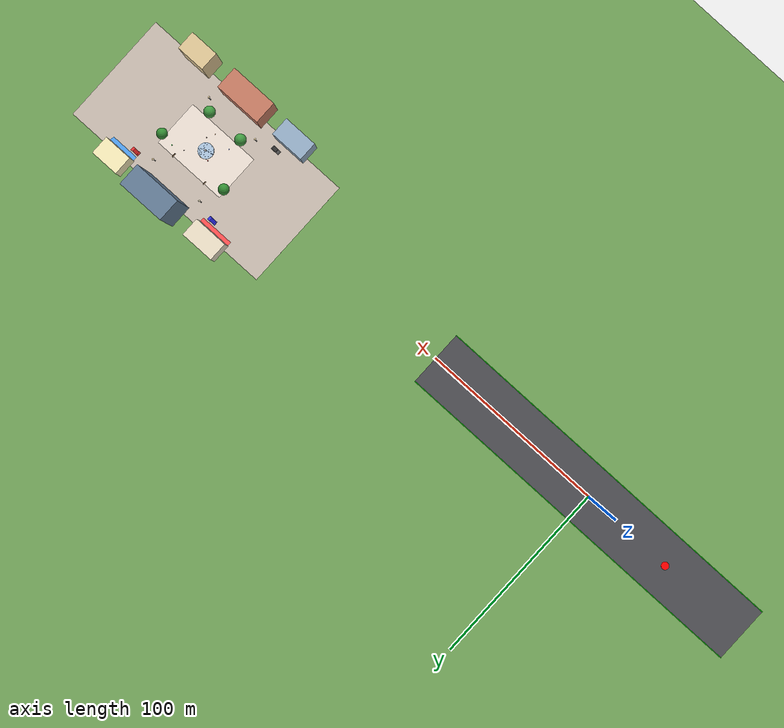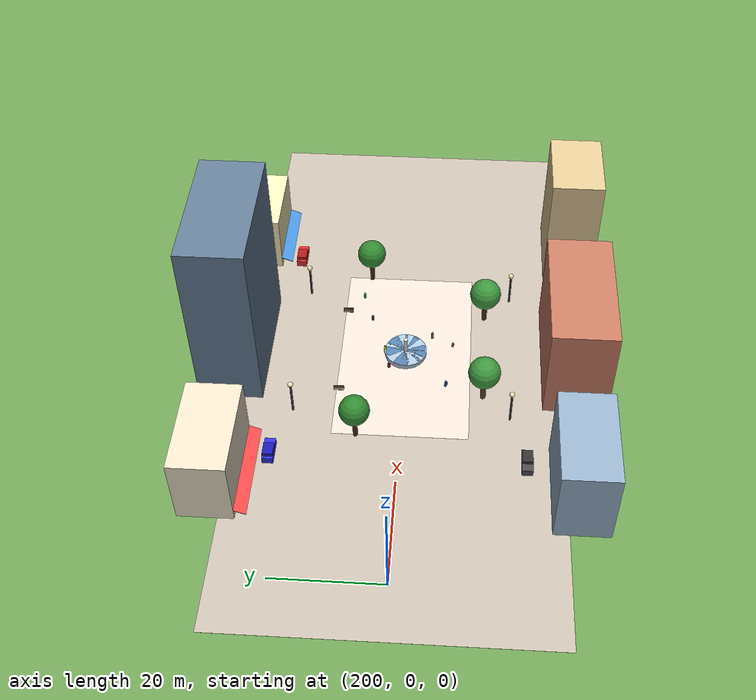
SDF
<?xml version="1.0"?>
<sdf version="1.9">
  <world name="boulevard">

    <physics name="1ms" type="ignored">
      <max_step_size>0.001</max_step_size>
      <real_time_factor>1.0</real_time_factor>
    </physics>

    <plugin filename="gz-sim-physics-system" name="gz::sim::systems::Physics"/>
    <plugin filename="gz-sim-user-commands-system" name="gz::sim::systems::UserCommands"/>
    <plugin filename="gz-sim-scene-broadcaster-system" name="gz::sim::systems::SceneBroadcaster"/>
    <plugin filename="gz-sim-imu-system" name="gz::sim::systems::Imu"/>
    <plugin filename="gz-sim-magnetometer-system" name="gz::sim::systems::Magnetometer"/>
    <plugin filename="gz-sim-air-pressure-system" name="gz::sim::systems::AirPressure"/>
    <plugin filename="gz-sim-navsat-system" name="gz::sim::systems::NavSat"/>
    <plugin filename="gz-sim-sensors-system" name="gz::sim::systems::Sensors">
      <render_engine>ogre2</render_engine>
    </plugin>

    <scene>
      <ambient>1.0 1.0 1.0</ambient>
      <background>0.8 0.8 1.0</background>
    </scene>

    <light type="directional" name="sun">
      <cast_shadows>true</cast_shadows>
      <pose>0 0 500 0 0 0</pose>
      <diffuse>1.0 0.95 0.9 1</diffuse>
      <specular>0.8 0.8 0.8 1</specular>
      <direction>-0.3 0.2 -0.9</direction>
    </light>

    <light type="directional" name="sun_diffuse">
      <cast_shadows>false</cast_shadows>
      <pose>0 0 500 0 0 0</pose>
      <diffuse>0.4 0.45 0.5 1</diffuse>
      <direction>0.5 -0.3 -0.8</direction>
    </light>

    <spherical_coordinates>
      <surface_model>EARTH_WGS84</surface_model>
      <world_frame_orientation>ENU</world_frame_orientation>
      <latitude_deg>47.397742</latitude_deg>
      <longitude_deg>8.545594</longitude_deg>
      <elevation>488.0</elevation>
      <heading_deg>0</heading_deg>
    </spherical_coordinates>

    <!-- Ground -->
    <model name="ground_plane">
      <static>true</static>
      <link name="link">
        <collision name="collision">
          <geometry>
            <plane><normal>0 0 1</normal><size>2000 2000</size></plane>
          </geometry>
        </collision>
        <visual name="visual">
          <geometry>
            <plane><normal>0 0 1</normal><size>2000 2000</size></plane>
          </geometry>
          <material>
            <ambient>0.4 0.6 0.3 1</ambient>
            <diffuse>0.45 0.65 0.35 1</diffuse>
          </material>
        </visual>
      </link>
    </model>

    <!-- ==================== RUNWAY (Drone spawns at -50, 0, 0) ==================== -->
    <model name="runway">
      <static>true</static>
      <pose>0 0 0.01 0 0 0</pose>
      <link name="link">
        <visual name="surface">
          <geometry>
            <box><size>200 30 0.02</size></box>
          </geometry>
          <material>
            <ambient>0.25 0.25 0.27 1</ambient>
            <diffuse>0.3 0.3 0.32 1</diffuse>
          </material>
        </visual>
        <collision name="collision">
          <geometry>
            <box><size>200 30 0.02</size></box>
          </geometry>
        </collision>
      </link>
    </model>

    <!-- Runway centerline -->
    <model name="centerline">
      <static>true</static>
      <pose>0 0 0.015 0 0 0</pose>
      <link name="link">
        <visual name="line">
          <geometry>
            <box><size>200 0.5 0.005</size></box>
          </geometry>
          <material>
            <ambient>1 1 0 1</ambient>
            <diffuse>1 1 0 1</diffuse>
          </material>
        </visual>
      </link>
    </model>

    <!-- Runway edge lights - left -->
    <model name="runway_lights_left">
      <static>true</static>
      <pose>0 -15 0.2 0 0 0</pose>
      <link name="link">
        <visual name="lights">
          <geometry>
            <box><size>200 0.3 0.4</size></box>
          </geometry>
          <material>
            <ambient>0 1 0 1</ambient>
            <diffuse>0 1 0 1</diffuse>
            <emissive>0 0.7 0 1</emissive>
          </material>
        </visual>
      </link>
    </model>

    <!-- Runway edge lights - right -->
    <model name="runway_lights_right">
      <static>true</static>
      <pose>0 15 0.2 0 0 0</pose>
      <link name="link">
        <visual name="lights">
          <geometry>
            <box><size>200 0.3 0.4</size></box>
          </geometry>
          <material>
            <ambient>0 1 0 1</ambient>
            <diffuse>0 1 0 1</diffuse>
            <emissive>0 0.7 0 1</emissive>
          </material>
        </visual>
      </link>
    </model>

    <!-- Drone spawn marker (visual only - shows where drone spawns) -->
    <model name="spawn_marker">
      <static>true</static>
      <pose>-50 0 0.05 0 0 0</pose>
      <link name="link">
        <visual name="marker">
          <geometry>
            <cylinder><radius>2</radius><length>0.1</length></cylinder>
          </geometry>
          <material>
            <ambient>1 0 0 1</ambient>
            <diffuse>1 0 0 1</diffuse>
          </material>
        </visual>
      </link>
    </model>

    <!-- ==================== BOULEVARD AREA (at x=250m from runway start) ==================== -->

    <!-- Main boulevard pavement -->
    <model name="boulevard_pavement">
      <static>true</static>
      <pose>250 0 0.01 0 0 0</pose>
      <link name="link">
        <visual name="pavement">
          <geometry>
            <box><size>120 60 0.02</size></box>
          </geometry>
          <material>
            <ambient>0.75 0.7 0.65 1</ambient>
            <diffuse>0.8 0.75 0.7 1</diffuse>
          </material>
        </visual>
        <collision name="collision">
          <geometry>
            <box><size>120 60 0.02</size></box>
          </geometry>
        </collision>
      </link>
    </model>

    <!-- Central plaza -->
    <model name="plaza">
      <static>true</static>
      <pose>250 0 0.02 0 0 0</pose>
      <link name="link">
        <visual name="tiles">
          <geometry>
            <box><size>40 25 0.01</size></box>
          </geometry>
          <material>
            <ambient>0.9 0.85 0.8 1</ambient>
            <diffuse>0.95 0.9 0.85 1</diffuse>
          </material>
        </visual>
      </link>
    </model>

    <!-- Decorative fountain -->
    <model name="fountain">
      <static>true</static>
      <pose>250 0 0 0 0 0</pose>
      <link name="base">
        <visual name="basin">
          <pose>0 0 0.5 0 0 0</pose>
          <geometry>
            <cylinder><radius>4</radius><length>1</length></cylinder>
          </geometry>
          <material>
            <ambient>0.6 0.7 0.8 1</ambient>
            <diffuse>0.7 0.8 0.9 1</diffuse>
          </material>
        </visual>
        <visual name="water">
          <pose>0 0 0.95 0 0 0</pose>
          <geometry>
            <cylinder><radius>3.8</radius><length>0.1</length></cylinder>
          </geometry>
          <material>
            <ambient>0.2 0.4 0.6 0.8</ambient>
            <diffuse>0.3 0.5 0.7 0.8</diffuse>
          </material>
        </visual>
        <visual name="centerpiece">
          <pose>0 0 2.5 0 0 0</pose>
          <geometry>
            <cylinder><radius>0.4</radius><length>3</length></cylinder>
          </geometry>
          <material>
            <ambient>0.85 0.85 0.85 1</ambient>
            <diffuse>0.9 0.9 0.9 1</diffuse>
          </material>
        </visual>
        <collision name="collision">
          <pose>0 0 0.5 0 0 0</pose>
          <geometry>
            <cylinder><radius>4</radius><length>1</length></cylinder>
          </geometry>
        </collision>
      </link>
    </model>

    <!-- ==================== BUILDINGS ==================== -->

    <!-- Modern glass tower -->
    <model name="tower_glass">
      <static>true</static>
      <pose>250 32 18 0 0 0</pose>
      <link name="link">
        <visual name="building">
          <geometry>
            <box><size>25 12 36</size></box>
          </geometry>
          <material>
            <ambient>0.3 0.4 0.5 1</ambient>
            <diffuse>0.4 0.5 0.6 1</diffuse>
            <specular>0.9 0.9 0.9 1</specular>
          </material>
        </visual>
        <collision name="collision">
          <geometry>
            <box><size>25 12 36</size></box>
          </geometry>
        </collision>
      </link>
    </model>

    <!-- Brick apartment building -->
    <model name="apartment_brick">
      <static>true</static>
      <pose>250 -32 10 0 0 0</pose>
      <link name="link">
        <visual name="building">
          <geometry>
            <box><size>25 12 20</size></box>
          </geometry>
          <material>
            <ambient>0.7 0.4 0.3 1</ambient>
            <diffuse>0.8 0.5 0.4 1</diffuse>
          </material>
        </visual>
        <collision name="collision">
          <geometry>
            <box><size>25 12 20</size></box>
          </geometry>
        </collision>
      </link>
    </model>

    <!-- Shop with red awning -->
    <model name="shop_red_awning">
      <static>true</static>
      <pose>220 32 7 0 0 0</pose>
      <link name="link">
        <visual name="building">
          <geometry>
            <box><size>18 10 14</size></box>
          </geometry>
          <material>
            <ambient>0.9 0.85 0.75 1</ambient>
            <diffuse>0.95 0.9 0.8 1</diffuse>
          </material>
        </visual>
        <visual name="awning">
          <pose>0 -6 -5 0.4 0 0</pose>
          <geometry>
            <box><size>18 2.5 0.1</size></box>
          </geometry>
          <material>
            <ambient>0.9 0.2 0.2 1</ambient>
            <diffuse>1 0.3 0.3 1</diffuse>
          </material>
        </visual>
        <collision name="collision">
          <geometry>
            <box><size>18 10 14</size></box>
          </geometry>
        </collision>
      </link>
    </model>

    <!-- Cafe with blue awning -->
    <model name="cafe_blue">
      <static>true</static>
      <pose>280 32 6 0 0 0</pose>
      <link name="link">
        <visual name="building">
          <geometry>
            <box><size>15 10 12</size></box>
          </geometry>
          <material>
            <ambient>0.95 0.9 0.7 1</ambient>
            <diffuse>1 0.95 0.75 1</diffuse>
          </material>
        </visual>
        <visual name="awning">
          <pose>0 -6 -4 0.4 0 0</pose>
          <geometry>
            <box><size>15 2.5 0.1</size></box>
          </geometry>
          <material>
            <ambient>0.2 0.5 0.8 1</ambient>
            <diffuse>0.3 0.6 0.9 1</diffuse>
          </material>
        </visual>
        <collision name="collision">
          <geometry>
            <box><size>15 10 12</size></box>
          </geometry>
        </collision>
      </link>
    </model>

    <!-- Office building -->
    <model name="office_gray">
      <static>true</static>
      <pose>220 -32 8 0 0 0</pose>
      <link name="link">
        <visual name="building">
          <geometry>
            <box><size>18 10 16</size></box>
          </geometry>
          <material>
            <ambient>0.5 0.6 0.7 1</ambient>
            <diffuse>0.6 0.7 0.8 1</diffuse>
          </material>
        </visual>
        <collision name="collision">
          <geometry>
            <box><size>18 10 16</size></box>
          </geometry>
        </collision>
      </link>
    </model>

    <!-- Hotel -->
    <model name="hotel_beige">
      <static>true</static>
      <pose>280 -32 12 0 0 0</pose>
      <link name="link">
        <visual name="building">
          <geometry>
            <box><size>15 10 24</size></box>
          </geometry>
          <material>
            <ambient>0.8 0.7 0.5 1</ambient>
            <diffuse>0.9 0.8 0.6 1</diffuse>
          </material>
        </visual>
        <collision name="collision">
          <geometry>
            <box><size>15 10 24</size></box>
          </geometry>
        </collision>
      </link>
    </model>

    <!-- ==================== STREET FURNITURE ==================== -->

    <!-- Street lights -->
    <model name="light_1">
      <static>true</static>
      <pose>235 20 0 0 0 0</pose>
      <link name="pole">
        <visual name="pole">
          <pose>0 0 3.5 0 0 0</pose>
          <geometry>
            <cylinder><radius>0.2</radius><length>7</length></cylinder>
          </geometry>
          <material>
            <ambient>0.2 0.2 0.2 1</ambient>
            <diffuse>0.3 0.3 0.3 1</diffuse>
          </material>
        </visual>
        <visual name="lamp">
          <pose>0 0 7.2 0 0 0</pose>
          <geometry>
            <sphere><radius>0.5</radius></sphere>
          </geometry>
          <material>
            <ambient>1 0.9 0.7 1</ambient>
            <diffuse>1 0.95 0.8 1</diffuse>
            <emissive>0.9 0.8 0.6 1</emissive>
          </material>
        </visual>
      </link>
    </model>

    <model name="light_2">
      <static>true</static>
      <pose>265 20 0 0 0 0</pose>
      <link name="pole">
        <visual name="pole">
          <pose>0 0 3.5 0 0 0</pose>
          <geometry>
            <cylinder><radius>0.2</radius><length>7</length></cylinder>
          </geometry>
          <material>
            <ambient>0.2 0.2 0.2 1</ambient>
          </material>
        </visual>
        <visual name="lamp">
          <pose>0 0 7.2 0 0 0</pose>
          <geometry>
            <sphere><radius>0.5</radius></sphere>
          </geometry>
          <material>
            <ambient>1 0.9 0.7 1</ambient>
            <emissive>0.9 0.8 0.6 1</emissive>
          </material>
        </visual>
      </link>
    </model>

    <model name="light_3">
      <static>true</static>
      <pose>235 -20 0 0 0 0</pose>
      <link name="pole">
        <visual name="pole">
          <pose>0 0 3.5 0 0 0</pose>
          <geometry>
            <cylinder><radius>0.2</radius><length>7</length></cylinder>
          </geometry>
          <material>
            <ambient>0.2 0.2 0.2 1</ambient>
          </material>
        </visual>
        <visual name="lamp">
          <pose>0 0 7.2 0 0 0</pose>
          <geometry>
            <sphere><radius>0.5</radius></sphere>
          </geometry>
          <material>
            <ambient>1 0.9 0.7 1</ambient>
            <emissive>0.9 0.8 0.6 1</emissive>
          </material>
        </visual>
      </link>
    </model>

    <model name="light_4">
      <static>true</static>
      <pose>265 -20 0 0 0 0</pose>
      <link name="pole">
        <visual name="pole">
          <pose>0 0 3.5 0 0 0</pose>
          <geometry>
            <cylinder><radius>0.2</radius><length>7</length></cylinder>
          </geometry>
          <material>
            <ambient>0.2 0.2 0.2 1</ambient>
          </material>
        </visual>
        <visual name="lamp">
          <pose>0 0 7.2 0 0 0</pose>
          <geometry>
            <sphere><radius>0.5</radius></sphere>
          </geometry>
          <material>
            <ambient>1 0.9 0.7 1</ambient>
            <emissive>0.9 0.8 0.6 1</emissive>
          </material>
        </visual>
      </link>
    </model>

    <!-- Trees -->
    <model name="tree_1">
      <static>true</static>
      <pose>240 -15 0 0 0 0</pose>
      <link name="trunk">
        <visual name="trunk">
          <pose>0 0 3 0 0 0</pose>
          <geometry>
            <cylinder><radius>0.5</radius><length>6</length></cylinder>
          </geometry>
          <material>
            <ambient>0.3 0.2 0.1 1</ambient>
            <diffuse>0.4 0.3 0.2 1</diffuse>
          </material>
        </visual>
        <visual name="crown">
          <pose>0 0 7 0 0 0</pose>
          <geometry>
            <sphere><radius>3</radius></sphere>
          </geometry>
          <material>
            <ambient>0.2 0.5 0.2 1</ambient>
            <diffuse>0.25 0.6 0.25 1</diffuse>
          </material>
        </visual>
      </link>
    </model>

    <model name="tree_2">
      <static>true</static>
      <pose>260 -15 0 0 0 0</pose>
      <link name="trunk">
        <visual name="trunk">
          <pose>0 0 3 0 0 0</pose>
          <geometry>
            <cylinder><radius>0.5</radius><length>6</length></cylinder>
          </geometry>
          <material>
            <ambient>0.3 0.2 0.1 1</ambient>
          </material>
        </visual>
        <visual name="crown">
          <pose>0 0 7 0 0 0</pose>
          <geometry>
            <sphere><radius>3</radius></sphere>
          </geometry>
          <material>
            <ambient>0.2 0.5 0.2 1</ambient>
            <diffuse>0.25 0.6 0.25 1</diffuse>
          </material>
        </visual>
      </link>
    </model>

    <model name="tree_3">
      <static>true</static>
      <pose>230 8 0 0 0 0</pose>
      <link name="trunk">
        <visual name="trunk">
          <pose>0 0 3 0 0 0</pose>
          <geometry>
            <cylinder><radius>0.45</radius><length>6</length></cylinder>
          </geometry>
          <material>
            <ambient>0.3 0.2 0.1 1</ambient>
          </material>
        </visual>
        <visual name="crown">
          <pose>0 0 7 0 0 0</pose>
          <geometry>
            <sphere><radius>2.8</radius></sphere>
          </geometry>
          <material>
            <ambient>0.15 0.45 0.15 1</ambient>
            <diffuse>0.2 0.55 0.2 1</diffuse>
          </material>
        </visual>
      </link>
    </model>

    <model name="tree_4">
      <static>true</static>
      <pose>270 8 0 0 0 0</pose>
      <link name="trunk">
        <visual name="trunk">
          <pose>0 0 3 0 0 0</pose>
          <geometry>
            <cylinder><radius>0.45</radius><length>6</length></cylinder>
          </geometry>
          <material>
            <ambient>0.3 0.2 0.1 1</ambient>
          </material>
        </visual>
        <visual name="crown">
          <pose>0 0 7 0 0 0</pose>
          <geometry>
            <sphere><radius>2.8</radius></sphere>
          </geometry>
          <material>
            <ambient>0.15 0.45 0.15 1</ambient>
            <diffuse>0.2 0.55 0.2 1</diffuse>
          </material>
        </visual>
      </link>
    </model>

    <!-- Benches -->
    <model name="bench_1">
      <static>true</static>
      <pose>240 12 0 0 0 1.57</pose>
      <link name="link">
        <visual name="seat">
          <pose>0 0 0.5 0 0 0</pose>
          <geometry>
            <box><size>2 0.5 0.05</size></box>
          </geometry>
          <material>
            <ambient>0.4 0.3 0.2 1</ambient>
            <diffuse>0.5 0.4 0.3 1</diffuse>
          </material>
        </visual>
        <visual name="back">
          <pose>0 -0.25 0.85 0 0 0</pose>
          <geometry>
            <box><size>2 0.05 0.7</size></box>
          </geometry>
          <material>
            <ambient>0.4 0.3 0.2 1</ambient>
          </material>
        </visual>
      </link>
    </model>

    <model name="bench_2">
      <static>true</static>
      <pose>260 12 0 0 0 1.57</pose>
      <link name="link">
        <visual name="seat">
          <pose>0 0 0.5 0 0 0</pose>
          <geometry>
            <box><size>2 0.5 0.05</size></box>
          </geometry>
          <material>
            <ambient>0.4 0.3 0.2 1</ambient>
          </material>
        </visual>
        <visual name="back">
          <pose>0 -0.25 0.85 0 0 0</pose>
          <geometry>
            <box><size>2 0.05 0.7</size></box>
          </geometry>
          <material>
            <ambient>0.4 0.3 0.2 1</ambient>
          </material>
        </visual>
      </link>
    </model>

    <!-- ==================== PARKED CARS ==================== -->

    <model name="car_blue">
      <static>true</static>
      <pose>225 23 0 0 0 0</pose>
      <link name="body">
        <visual name="body">
          <pose>0 0 0.7 0 0 0</pose>
          <geometry>
            <box><size>4.5 2 1.4</size></box>
          </geometry>
          <material>
            <ambient>0.1 0.1 0.7 1</ambient>
            <diffuse>0.2 0.2 0.9 1</diffuse>
            <specular>0.6 0.6 0.6 1</specular>
          </material>
        </visual>
        <visual name="roof">
          <pose>-0.5 0 1.6 0 0 0</pose>
          <geometry>
            <box><size>2.5 1.9 1</size></box>
          </geometry>
          <material>
            <ambient>0.1 0.1 0.7 1</ambient>
          </material>
        </visual>
        <collision name="collision">
          <pose>0 0 0.7 0 0 0</pose>
          <geometry>
            <box><size>4.5 2 1.4</size></box>
          </geometry>
        </collision>
      </link>
    </model>

    <model name="car_red">
      <static>true</static>
      <pose>275 23 0 0 0 0</pose>
      <link name="body">
        <visual name="body">
          <pose>0 0 0.7 0 0 0</pose>
          <geometry>
            <box><size>4.5 2 1.4</size></box>
          </geometry>
          <material>
            <ambient>0.7 0.1 0.1 1</ambient>
            <diffuse>0.9 0.2 0.2 1</diffuse>
            <specular>0.6 0.6 0.6 1</specular>
          </material>
        </visual>
        <visual name="roof">
          <pose>-0.5 0 1.6 0 0 0</pose>
          <geometry>
            <box><size>2.5 1.9 1</size></box>
          </geometry>
          <material>
            <ambient>0.7 0.1 0.1 1</ambient>
          </material>
        </visual>
        <collision name="collision">
          <pose>0 0 0.7 0 0 0</pose>
          <geometry>
            <box><size>4.5 2 1.4</size></box>
          </geometry>
        </collision>
      </link>
    </model>

    <model name="car_gray">
      <static>true</static>
      <pose>225 -23 0 0 0 3.14</pose>
      <link name="body">
        <visual name="body">
          <pose>0 0 0.7 0 0 0</pose>
          <geometry>
            <box><size>4.5 2 1.4</size></box>
          </geometry>
          <material>
            <ambient>0.2 0.2 0.2 1</ambient>
            <diffuse>0.3 0.3 0.3 1</diffuse>
            <specular>0.7 0.7 0.7 1</specular>
          </material>
        </visual>
        <visual name="roof">
          <pose>-0.5 0 1.6 0 0 0</pose>
          <geometry>
            <box><size>2.5 1.9 1</size></box>
          </geometry>
          <material>
            <ambient>0.2 0.2 0.2 1</ambient>
          </material>
        </visual>
        <collision name="collision">
          <pose>0 0 0.7 0 0 0</pose>
          <geometry>
            <box><size>4.5 2 1.4</size></box>
          </geometry>
        </collision>
      </link>
    </model>

    <!-- ==================== PEOPLE (7 pedestrians) ==================== -->

    <!-- 🎯 TARGET: BRIGHT YELLOW JACKET -->
    <model name="TARGET_YELLOW">
      <pose>250 4 0 0 0 0</pose>
      <link name="body">
        <visual name="jacket">
          <pose>0 0 0.95 0 0 0</pose>
          <geometry>
            <box><size>0.5 0.35 1.1</size></box>
          </geometry>
          <material>
            <ambient>1 0.9 0 1</ambient>
            <diffuse>1 0.95 0.1 1</diffuse>
            <emissive>0.4 0.4 0 1</emissive>
          </material>
        </visual>
        <visual name="head">
          <pose>0 0 1.7 0 0 0</pose>
          <geometry>
            <sphere><radius>0.15</radius></sphere>
          </geometry>
          <material>
            <ambient>0.95 0.8 0.7 1</ambient>
            <diffuse>1 0.85 0.75 1</diffuse>
          </material>
        </visual>
        <visual name="eye_left">
          <pose>-0.065 0.12 1.75 0 0 0</pose>
          <geometry>
            <sphere><radius>0.02</radius></sphere>
          </geometry>
          <material>
            <ambient>0.1 0.1 0.1 1</ambient>
          </material>
        </visual>
        <visual name="eye_right">
          <pose>0.065 0.12 1.75 0 0 0</pose>
          <geometry>
            <sphere><radius>0.02</radius></sphere>
          </geometry>
          <material>
            <ambient>0.1 0.1 0.1 1</ambient>
          </material>
        </visual>
        <visual name="hair">
          <pose>0 0 1.8 0 0 0</pose>
          <geometry>
            <sphere><radius>0.155</radius></sphere>
          </geometry>
          <material>
            <ambient>0.2 0.1 0.05 1</ambient>
            <diffuse>0.3 0.15 0.1 1</diffuse>
          </material>
        </visual>
        <visual name="leg_left">
          <pose>-0.13 0 0.5 0 0 0</pose>
          <geometry>
            <cylinder><radius>0.1</radius><length>1</length></cylinder>
          </geometry>
          <material>
            <ambient>0.1 0.1 0.1 1</ambient>
          </material>
        </visual>
        <visual name="leg_right">
          <pose>0.13 0 0.5 0 0 0</pose>
          <geometry>
            <cylinder><radius>0.1</radius><length>1</length></cylinder>
          </geometry>
          <material>
            <ambient>0.1 0.1 0.1 1</ambient>
          </material>
        </visual>
        <collision name="collision">
          <pose>0 0 1 0 0 0</pose>
          <geometry>
            <box><size>0.5 0.35 2</size></box>
          </geometry>
        </collision>
      </link>
    </model>

    <!-- Woman in blue dress -->
    <model name="woman_blue">
      <pose>242 -8 0 0 0 2.3</pose>
      <link name="body">
        <visual name="dress">
          <pose>0 0 0.9 0 0 0</pose>
          <geometry>
            <box><size>0.45 0.35 1.1</size></box>
          </geometry>
          <material>
            <ambient>0.2 0.3 0.7 1</ambient>
            <diffuse>0.3 0.4 0.8 1</diffuse>
          </material>
        </visual>
        <visual name="head">
          <pose>0 0 1.65 0 0 0</pose>
          <geometry>
            <sphere><radius>0.14</radius></sphere>
          </geometry>
          <material>
            <ambient>0.92 0.78 0.68 1</ambient>
          </material>
        </visual>
        <visual name="eye_left">
          <pose>-0.06 0.11 1.7 0 0 0</pose>
          <geometry><sphere><radius>0.018</radius></sphere></geometry>
          <material><ambient>0.05 0.05 0.05 1</ambient></material>
        </visual>
        <visual name="eye_right">
          <pose>0.06 0.11 1.7 0 0 0</pose>
          <geometry><sphere><radius>0.018</radius></sphere></geometry>
          <material><ambient>0.05 0.05 0.05 1</ambient></material>
        </visual>
        <visual name="hair">
          <pose>0 0 1.75 0 0 0</pose>
          <geometry><sphere><radius>0.145</radius></sphere></geometry>
          <material><ambient>0.15 0.1 0.05 1</ambient></material>
        </visual>
        <collision name="collision">
          <pose>0 0 1 0 0 0</pose>
          <geometry><box><size>0.45 0.35 2</size></box></geometry>
        </collision>
      </link>
    </model>

    <!-- Man in gray suit -->
    <model name="man_suit">
      <pose>258 7 0 0 0 -2.5</pose>
      <link name="body">
        <visual name="suit">
          <pose>0 0 0.95 0 0 0</pose>
          <geometry>
            <box><size>0.45 0.32 1.05</size></box>
          </geometry>
          <material>
            <ambient>0.3 0.3 0.35 1</ambient>
            <diffuse>0.4 0.4 0.45 1</diffuse>
          </material>
        </visual>
        <visual name="head">
          <pose>0 0 1.68 0 0 0</pose>
          <geometry>
            <sphere><radius>0.145</radius></sphere>
          </geometry>
          <material>
            <ambient>0.88 0.72 0.62 1</ambient>
          </material>
        </visual>
        <visual name="eye_left">
          <pose>-0.062 0.115 1.73 0 0 0</pose>
          <geometry><sphere><radius>0.019</radius></sphere></geometry>
          <material><ambient>0.05 0.05 0.05 1</ambient></material>
        </visual>
        <visual name="eye_right">
          <pose>0.062 0.115 1.73 0 0 0</pose>
          <geometry><sphere><radius>0.019</radius></sphere></geometry>
          <material><ambient>0.05 0.05 0.05 1</ambient></material>
        </visual>
        <collision name="collision">
          <pose>0 0 1 0 0 0</pose>
          <geometry><box><size>0.45 0.32 2</size></box></geometry>
        </collision>
      </link>
    </model>

    <!-- Teen in red hoodie -->
    <model name="teen_hoodie">
      <pose>246 3 0 0 0 1</pose>
      <link name="body">
        <visual name="hoodie">
          <pose>0 0 0.9 0 0 0</pose>
          <geometry>
            <box><size>0.46 0.36 1.08</size></box>
          </geometry>
          <material>
            <ambient>0.6 0.1 0.1 1</ambient>
            <diffuse>0.75 0.15 0.15 1</diffuse>
          </material>
        </visual>
        <visual name="head">
          <pose>0 0 1.63 0 0 0</pose>
          <geometry>
            <sphere><radius>0.135</radius></sphere>
          </geometry>
          <material>
            <ambient>0.85 0.7 0.6 1</ambient>
          </material>
        </visual>
        <visual name="eye_left">
          <pose>-0.058 0.108 1.68 0 0 0</pose>
          <geometry><sphere><radius>0.018</radius></sphere></geometry>
          <material><ambient>0.05 0.05 0.05 1</ambient></material>
        </visual>
        <visual name="eye_right">
          <pose>0.058 0.108 1.68 0 0 0</pose>
          <geometry><sphere><radius>0.018</radius></sphere></geometry>
          <material><ambient>0.05 0.05 0.05 1</ambient></material>
        </visual>
        <collision name="collision">
          <pose>0 0 1 0 0 0</pose>
          <geometry><box><size>0.46 0.36 2</size></box></geometry>
        </collision>
      </link>
    </model>

    <!-- Elderly woman -->
    <model name="elderly_woman">
      <pose>254 -5 0 0 0 -1.5</pose>
      <link name="body">
        <visual name="coat">
          <pose>0 0 0.93 0 0 0</pose>
          <geometry>
            <box><size>0.48 0.38 1.15</size></box>
          </geometry>
          <material>
            <ambient>0.5 0.35 0.25 1</ambient>
            <diffuse>0.6 0.45 0.35 1</diffuse>
          </material>
        </visual>
        <visual name="head">
          <pose>0 0 1.67 0 0 0</pose>
          <geometry>
            <sphere><radius>0.138</radius></sphere>
          </geometry>
          <material>
            <ambient>0.9 0.82 0.75 1</ambient>
          </material>
        </visual>
        <visual name="hair">
          <pose>0 0 1.76 0 0 0</pose>
          <geometry><sphere><radius>0.142</radius></sphere></geometry>
          <material><ambient>0.7 0.7 0.7 1</ambient></material>
        </visual>
        <collision name="collision">
          <pose>0 0 1 0 0 0</pose>
          <geometry><box><size>0.48 0.38 2</size></box></geometry>
        </collision>
      </link>
    </model>

    <!-- Child with backpack -->
    <model name="child_backpack">
      <pose>252 -9 0 0 0 0.8</pose>
      <link name="body">
        <visual name="shirt">
          <pose>0 0 0.7 0 0 0</pose>
          <geometry>
            <box><size>0.35 0.25 0.8</size></box>
          </geometry>
          <material>
            <ambient>0.9 0.5 0.2 1</ambient>
            <diffuse>1 0.6 0.3 1</diffuse>
          </material>
        </visual>
        <visual name="head">
          <pose>0 0 1.3 0 0 0</pose>
          <geometry>
            <sphere><radius>0.12</radius></sphere>
          </geometry>
          <material>
            <ambient>0.95 0.83 0.72 1</ambient>
          </material>
        </visual>
        <visual name="eye_left">
          <pose>-0.051 0.095 1.34 0 0 0</pose>
          <geometry><sphere><radius>0.015</radius></sphere></geometry>
          <material><ambient>0.05 0.05 0.05 1</ambient></material>
        </visual>
        <visual name="eye_right">
          <pose>0.051 0.095 1.34 0 0 0</pose>
          <geometry><sphere><radius>0.015</radius></sphere></geometry>
          <material><ambient>0.05 0.05 0.05 1</ambient></material>
        </visual>
        <visual name="backpack">
          <pose>0 -0.17 0.85 0 0 0</pose>
          <geometry>
            <box><size>0.28 0.18 0.4</size></box>
          </geometry>
          <material>
            <ambient>0.2 0.6 0.3 1</ambient>
            <diffuse>0.3 0.7 0.4 1</diffuse>
          </material>
        </visual>
        <collision name="collision">
          <pose>0 0 0.7 0 0 0</pose>
          <geometry><box><size>0.35 0.25 1.4</size></box></geometry>
        </collision>
      </link>
    </model>

    <!-- Jogger -->
    <model name="jogger">
      <pose>264 9 0 0 0 -0.5</pose>
      <link name="body">
        <visual name="tank_top">
          <pose>0 0 0.97 0 0 0</pose>
          <geometry>
            <box><size>0.42 0.3 1</size></box>
          </geometry>
          <material>
            <ambient>0.1 0.8 0.2 1</ambient>
            <diffuse>0.2 0.9 0.3 1</diffuse>
          </material>
        </visual>
        <visual name="head">
          <pose>0 0 1.69 0 0 0</pose>
          <geometry>
            <sphere><radius>0.142</radius></sphere>
          </geometry>
          <material>
            <ambient>0.7 0.55 0.45 1</ambient>
          </material>
        </visual>
        <visual name="eye_left">
          <pose>-0.06 0.113 1.74 0 0 0</pose>
          <geometry><sphere><radius>0.019</radius></sphere></geometry>
          <material><ambient>0.05 0.05 0.05 1</ambient></material>
        </visual>
        <visual name="eye_right">
          <pose>0.06 0.113 1.74 0 0 0</pose>
          <geometry><sphere><radius>0.019</radius></sphere></geometry>
          <material><ambient>0.05 0.05 0.05 1</ambient></material>
        </visual>
        <collision name="collision">
          <pose>0 0 1 0 0 0</pose>
          <geometry><box><size>0.42 0.3 2</size></box></geometry>
        </collision>
      </link>
    </model>

  </world>
</sdf>
